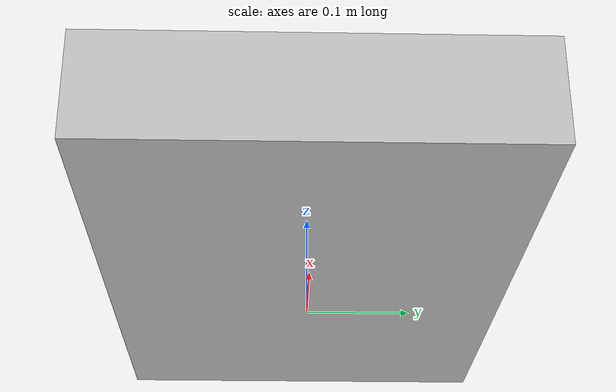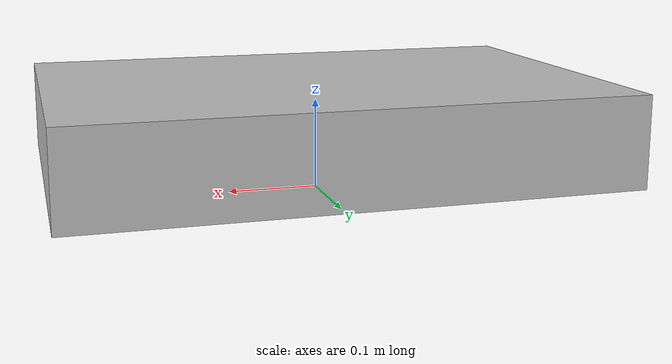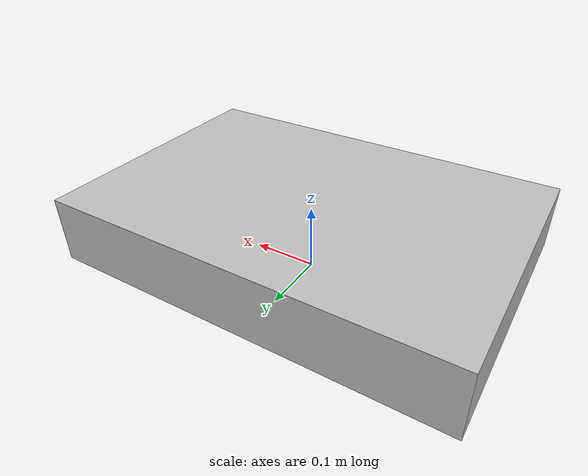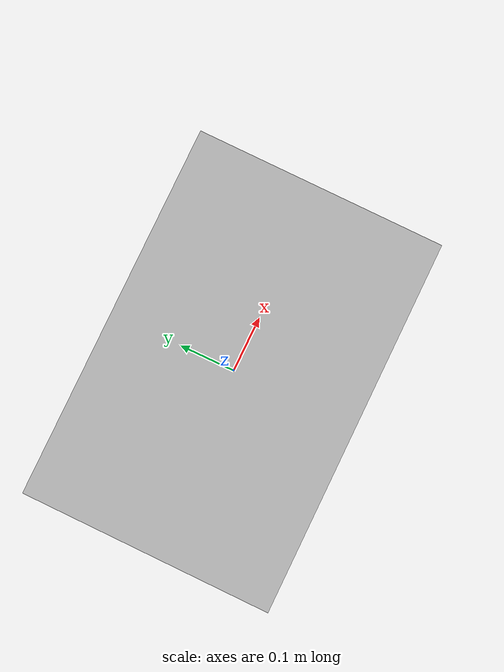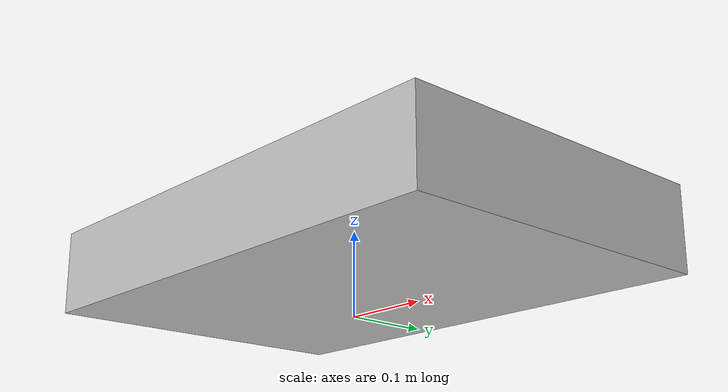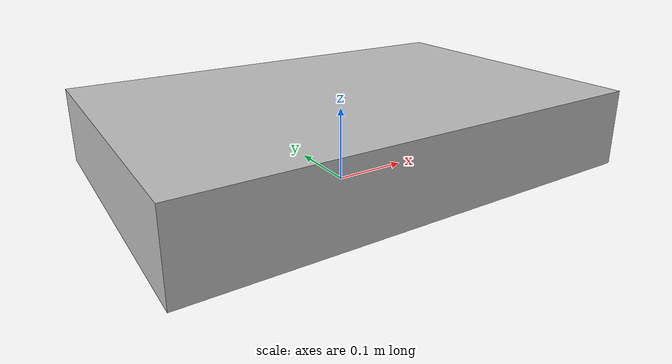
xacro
<?xml version="1.0"?>
<robot xmlns:xacro="http://www.ros.org/wiki/xacro">

  <!-- base_footprint: virtual link at ground level -->
  <link name="base_footprint"/>

  <!-- base_link: physical chassis center, lifted by wheel radius -->
  <joint name="base_joint" type="fixed">
    <parent link="base_footprint"/>
    <child link="base_link"/>
    <origin xyz="0 0 0.075" rpy="0 0 0"/>
  </joint>

  <link name="base_link">
    <visual>
      <geometry>
        <!-- 600mm x 400mm x 100mm aluminum frame chassis -->
        <box size="0.60 0.40 0.10"/>
      </geometry>
      <material name="silver">
        <color rgba="0.75 0.75 0.75 1"/>
      </material>
    </visual>
    <collision>
      <geometry>
        <box size="0.60 0.40 0.10"/>
      </geometry>
    </collision>
    <inertial>
      <mass value="5.0"/>
      <!-- box inertia: m/12*(h^2+d^2), etc. -->
      <inertia ixx="0.0558" ixy="0" ixz="0"
               iyy="0.1083" iyz="0"
               izz="0.1417"/>
    </inertial>
  </link>

</robot>
